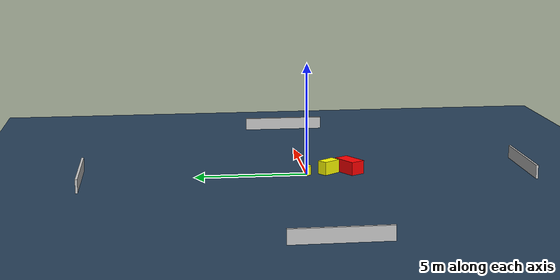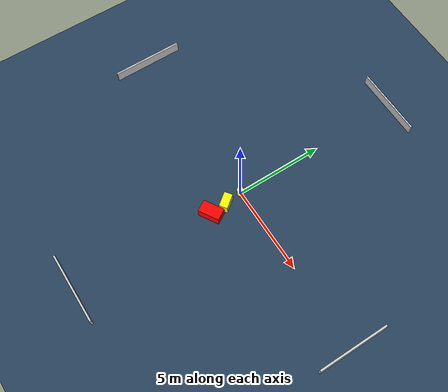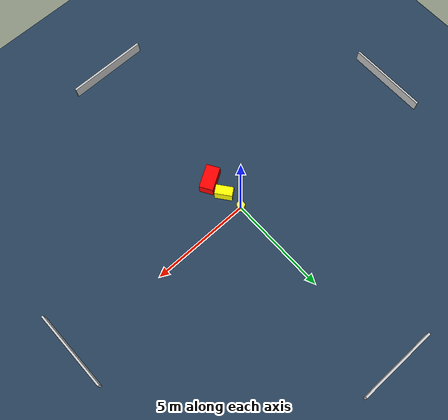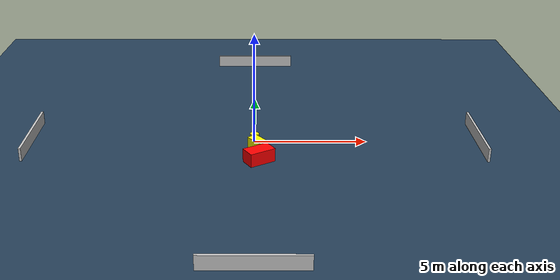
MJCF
<?xml version="1.0" ?>
<mujoco model="generated_environment">
  <option timestep="0.01" integrator="RK4" cone="elliptic"/>
  <default>
    <geom density="1"/>
  </default>
  <asset>
    <texture builtin="gradient" height="3072" name="skybox" rgb1="0.3 0.5 0.7" rgb2="0 0 0" type="skybox" width="512"/>
    <texture builtin="checker" height="300" name="groundplane" rgb1="0.2 0.3 0.4" rgb2="0.1 0.2 0.3" type="2d" width="300"/>
    <material name="groundplane" reflectance="0.2" texrepeat="5 5" texture="groundplane"/>
  </asset>
  <worldbody>
    <light dir="0 0 -1" directional="true" pos="0 0 1.5"/>
    <geom condim="3" friction="0.5 0.005 0.001" material="groundplane" name="floor" pos="0 0 0" size="0 0 0.05" type="plane"/>
    <body name="walls">
      <geom name="wall_1" condim="4" pos="-10.0 0.0 0.3" rgba="0.800000011920929 0.800000011920929 0.800000011920929 1.0" size="0.05 2.0 0.3" type="box"/>
      <geom name="wall_2" condim="4" pos="10.0 0.0 0.3" rgba="0.800000011920929 0.800000011920929 0.800000011920929 1.0" size="0.05 2.0 0.3" type="box"/>
      <geom name="wall_3" condim="4" pos="0.0 -10.0 0.3" rgba="0.800000011920929 0.800000011920929 0.800000011920929 1.0" size="2.0 0.05 0.3" type="box"/>
      <geom name="wall_4" condim="4" pos="0.0 10.0 0.3" rgba="0.800000011920929 0.800000011920929 0.800000011920929 1.0" size="2.0 0.05 0.3" type="box"/>
    </body>
    <body name="robot">
      <joint name="joint_x" type="slide" pos="0 0 0" axis="1 0 0"/>
      <joint name="joint_y" type="slide" pos="0 0 0" axis="0 1 0"/>
      <geom name="robot" type="cylinder" pos="0.0 0.0 0.2" size="0.2 0.2 0.0" mass="5.0" friction="1.0 0.005 0.0001" condim="4" rgba="1.0 1.0 0.0 1.0"/>
    </body>
    <body name="obstacle_1_movable">
      <geom name="obstacle_1_movable" condim="4" pos="0.13936797182217658 -1.0126421270015578 0.3" euler="0 0 217.45852353571928" friction="0.0 0.005 0.001" rgba="1.0 1.0 0.0 1.0" size="0.23590226701560169 0.4267766959415512 0.3" type="box" mass="0.1"/>
      <joint type="free"/>
    </body>
    <body name="obstacle_2_static">
      <geom name="obstacle_2_static" condim="4" pos="0.19901885223715418 -1.964919292932173 0.3" euler="0 0 31.055733669174863" friction="0.0 0.005 0.001" rgba="1.0 0.0 0.0 1.0" size="0.6017010471798668 0.3417276163702957 0.3" type="box"/>
    </body>
  </worldbody>
  <actuator>
    <motor name="actuator_x" joint="joint_x" gear="1" ctrlrange="-1 1"/>
    <motor name="actuator_y" joint="joint_y" gear="1" ctrlrange="-1 1"/>
  </actuator>
</mujoco>
